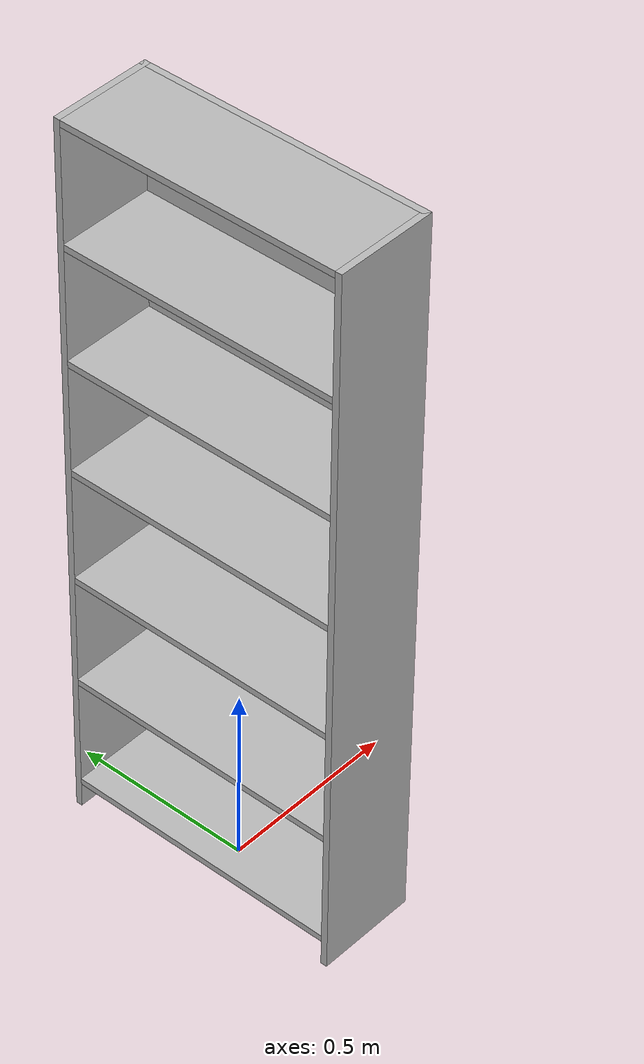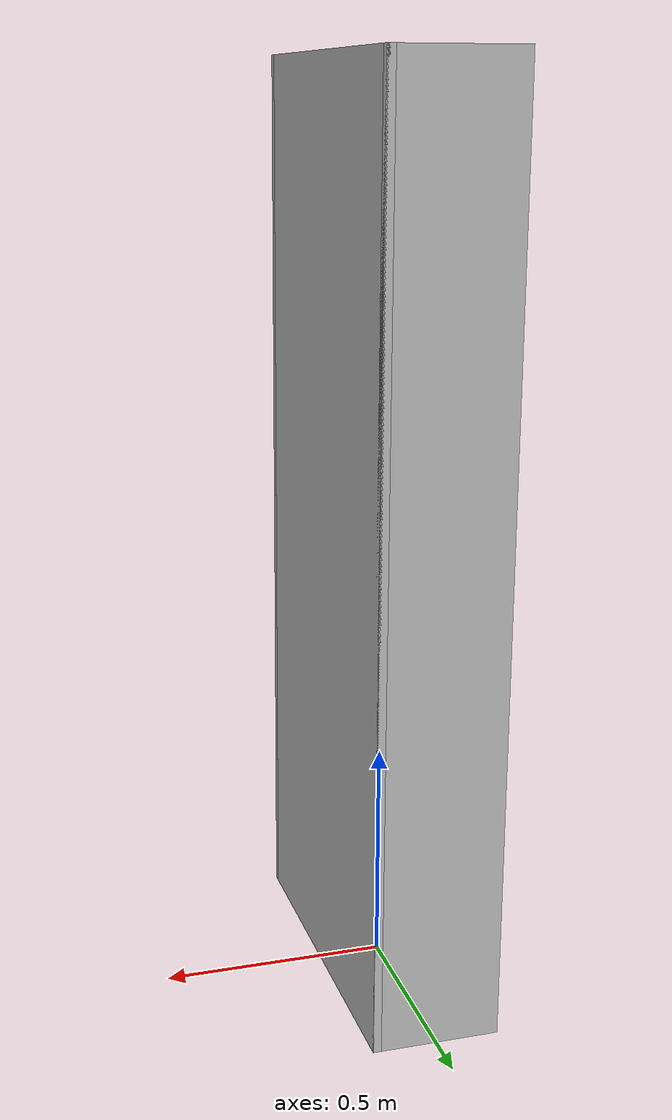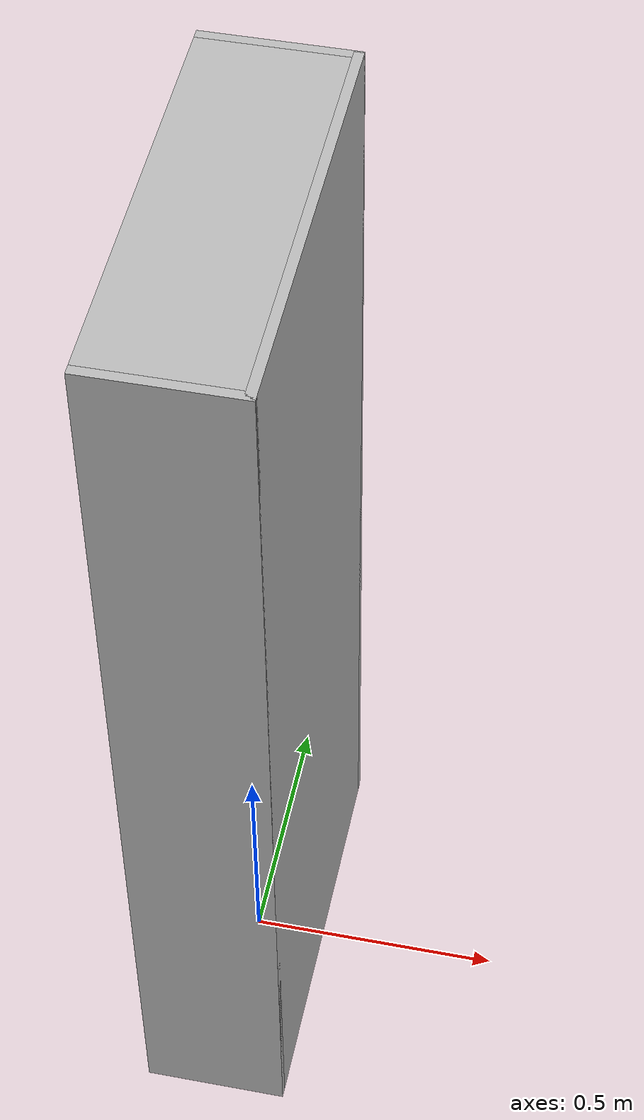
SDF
<?xml version="1.0"?>
<sdf version="1.6">
  <model name="reo2016/bookcase">
    <link name="1_link">
      <collision name="1_col">
        <geometry>
          <box>
            <size>0.28 0.018 2.025</size>
          </box>
        </geometry>
      </collision>
      <visual name="1_vis">
        <geometry>
          <box>
            <size>0.28 0.018 2.025</size>
          </box>
        </geometry>
      </visual>
      <pose>0 -0.391 1.0125 0 0 0</pose>
    </link>
    <link name="2_link">
      <collision name="2_col">
        <geometry>
          <box>
            <size>0.28 0.018 2.025</size>
          </box>
        </geometry>
      </collision>
      <visual name="2_vis">
        <geometry>
          <box>
            <size>0.28 0.018 2.025</size>
          </box>
        </geometry>
      </visual>
      <pose>0 0.391 1.0125 0 0 0</pose>
    </link>
    <link name="3_link">
      <collision name="3_col">
        <geometry>
          <box>
            <size>0.018 0.8 2.025</size>
          </box>
        </geometry>
      </collision>
      <visual name="3_vis">
        <geometry>
          <box>
            <size>0.018 0.8 2.025</size>
          </box>
        </geometry>
      </visual>
      <pose>0.131 0 1.0125 0 0 0</pose>
    </link>
    <link name="4_link">
      <collision name="4_col">
        <geometry>
          <box>
            <size>0.262 0.764 0.018</size>
          </box>
        </geometry>
      </collision>
      <visual name="4_vis">
        <geometry>
          <box>
            <size>0.262 0.764 0.018</size>
          </box>
        </geometry>
      </visual>
      <pose>-0.009 0 2.016 0 0 0</pose>
    </link>
    <link name="5_link">
      <collision name="5_col">
        <geometry>
          <box>
            <size>0.262 0.764 0.018</size>
          </box>
        </geometry>
      </collision>
      <visual name="5_vis">
        <geometry>
          <box>
            <size>0.262 0.764 0.018</size>
          </box>
        </geometry>
      </visual>
      <pose>-0.009 0 0.081 0 0 0</pose>
    </link>
    <link name="6_link">
      <collision name="6_col">
        <geometry>
          <box>
            <size>0.262 0.764 0.018</size>
          </box>
        </geometry>
      </collision>
      <visual name="6_vis">
        <geometry>
          <box>
            <size>0.262 0.764 0.018</size>
          </box>
        </geometry>
      </visual>
      <pose>-0.009 0 0.408 0 0 0</pose>
    </link>
    <link name="7_link">
      <collision name="7_col">
        <geometry>
          <box>
            <size>0.262 0.764 0.018</size>
          </box>
        </geometry>
      </collision>
      <visual name="7_vis">
        <geometry>
          <box>
            <size>0.262 0.764 0.018</size>
          </box>
        </geometry>
      </visual>
      <pose>-0.009 0 0.729 0 0 0</pose>
    </link>
    <link name="8_link">
      <collision name="8_col">
        <geometry>
          <box>
            <size>0.262 0.764 0.018</size>
          </box>
        </geometry>
      </collision>
      <visual name="8_vis">
        <geometry>
          <box>
            <size>0.262 0.764 0.018</size>
          </box>
        </geometry>
      </visual>
      <pose>-0.009 0 1.053 0 0 0</pose>
    </link>
    <link name="9_link">
      <collision name="9_col">
        <geometry>
          <box>
            <size>0.262 0.764 0.018</size>
          </box>
        </geometry>
      </collision>
      <visual name="9_vis">
        <geometry>
          <box>
            <size>0.262 0.764 0.018</size>
          </box>
        </geometry>
      </visual>
      <pose>-0.009 0 1.368 0 0 0</pose>
    </link>
    <link name="10_link">
      <collision name="10_col">
        <geometry>
          <box>
            <size>0.262 0.764 0.018</size>
          </box>
        </geometry>
      </collision>
      <visual name="10_vis">
        <geometry>
          <box>
            <size>0.262 0.764 0.018</size>
          </box>
        </geometry>
      </visual>
      <pose>-0.009 0 1.689 0 0 0</pose>
    </link>
    <link name="on_top_of">
      <virtual_volume name="on_top_of_vv">
        <geometry>
          <box>
            <size>0.23 0.7 0.25</size>
          </box>
        </geometry>
        <pose>-0.015 0.0 0.895 0 0 0</pose>
      </virtual_volume>
    </link>
    <link name="shelf1">
      <virtual_volume name="shelf1_vv">
        <geometry>
          <box>
            <size>0.23 0.7 0.25</size>
          </box>
        </geometry>
        <pose>-0.015 0.0 0.245 0 0 0</pose>
      </virtual_volume>
    </link>
    <link name="shelf2">
      <virtual_volume name="shelf2_vv">
        <geometry>
          <box>
            <size>0.13 0.5 0.25</size>
          </box>
        </geometry>
        <pose>-0.065 0.0 0.565 0 0 0</pose>
      </virtual_volume>
    </link>
    <link name="shelf3">
      <virtual_volume name="shelf3_vv">
        <geometry>
          <box>
            <size>0.23 0.7 0.25</size>
          </box>
        </geometry>
        <pose>-0.015 0.0 0.895 0 0 0</pose>
      </virtual_volume>
    </link>
    <link name="shelf4">
      <virtual_volume name="shelf4_vv">
        <geometry>
          <box>
            <size>0.23 0.7 0.25</size>
          </box>
        </geometry>
        <pose>-0.015 0.0 1.215 0 0 0</pose>
      </virtual_volume>
    </link>
    <link name="shelf5">
      <virtual_volume name="shelf5_vv">
        <geometry>
          <box>
            <size>0.23 0.7 0.25</size>
          </box>
        </geometry>
        <pose>-0.015 0.0 1.535 0 0 0</pose>
      </virtual_volume>
    </link>
    <link name="shelf6">
      <virtual_volume name="shelf6_vv">
        <geometry>
          <box>
            <size>0.23 0.7 0.25</size>
          </box>
        </geometry>
        <pose>-0.015 0.0 1.855 0 0 0</pose>
      </virtual_volume>
    </link>
    <link name="in_front_of">
      <virtual_volume name="in_front_of_vv">
        <geometry>
          <box>
            <size>0.2 0.4 0.01</size>
          </box>
        </geometry>
        <pose>-0.83 0.0 0.005 0 0 0</pose>
      </virtual_volume>
    </link>
    <static>true</static>
  </model>
</sdf>
